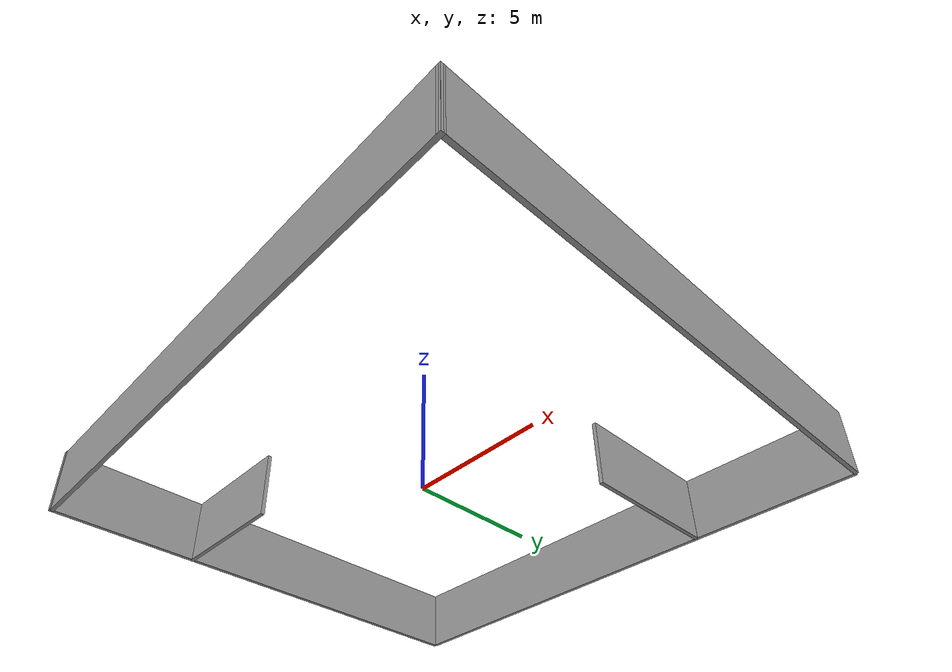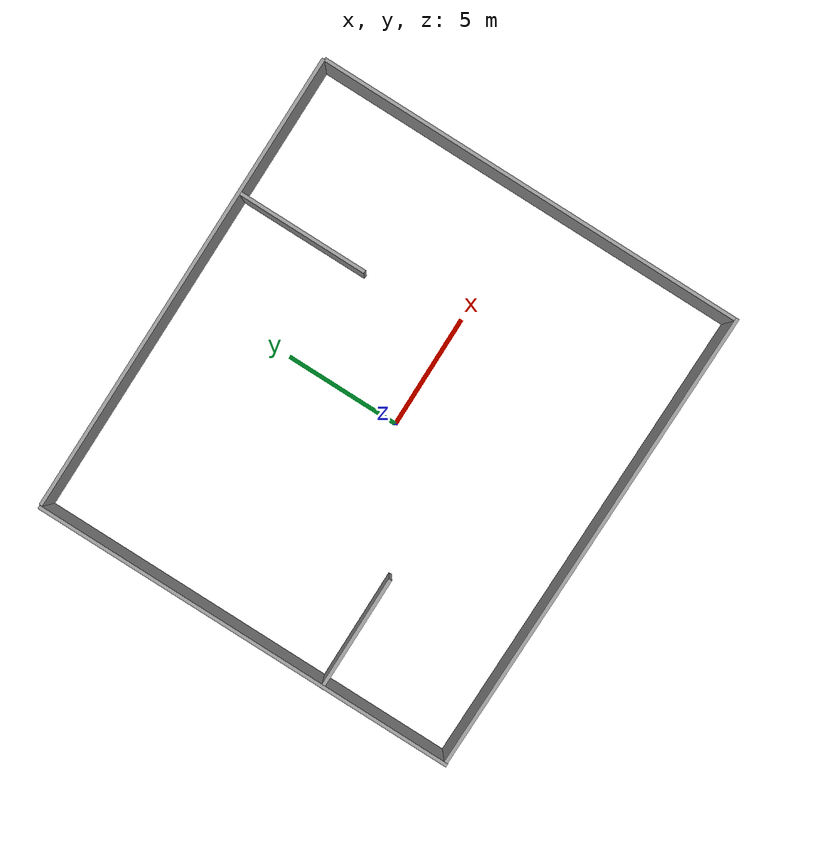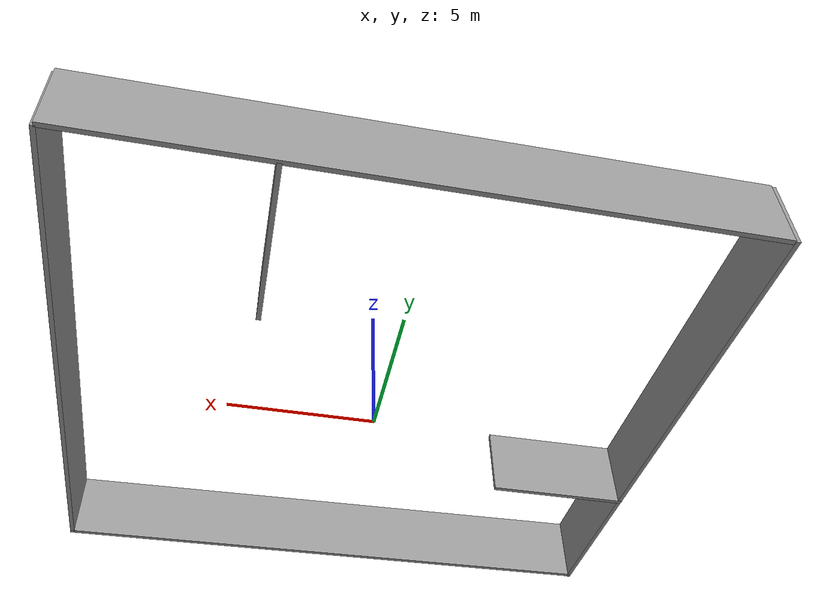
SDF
<?xml version='1.0'?>
<sdf version='1.7'>
  <model name='custom_map'>
    <pose>0.191195 0.468841 0 0 -0 0</pose>
    <link name='Wall_34'>
      <collision name='Wall_34_Collision'>
        <geometry>
          <box>
            <size>20.5 0.15 2.5</size>
          </box>
        </geometry>
        <pose>0 0 1.25 0 -0 0</pose>
      </collision>
      <visual name='Wall_34_Visual'>
        <pose>0 0 1.25 0 -0 0</pose>
        <geometry>
          <box>
            <size>20.5 0.15 2.5</size>
          </box>
        </geometry>
        <material>
          <script>
            <uri>file://media/materials/scripts/gazebo.material</uri>
            <name>Gazebo/Grey</name>
          </script>
          <ambient>1 1 1 1</ambient>
        </material>
        <meta>
          <layer>0</layer>
        </meta>
      </visual>
      <pose>0.041285 9.48138 0 0 -0 0</pose>
    </link>
    <link name='Wall_36'>
      <collision name='Wall_36_Collision'>
        <geometry>
          <box>
            <size>18.75 0.15 2.5</size>
          </box>
        </geometry>
        <pose>0 0 1.25 0 -0 0</pose>
      </collision>
      <visual name='Wall_36_Visual'>
        <pose>0 0 1.25 0 -0 0</pose>
        <geometry>
          <box>
            <size>18.75 0.15 2.5</size>
          </box>
        </geometry>
        <material>
          <script>
            <uri>file://media/materials/scripts/gazebo.material</uri>
            <name>Gazebo/Grey</name>
          </script>
          <ambient>1 1 1 1</ambient>
        </material>
        <meta>
          <layer>0</layer>
        </meta>
      </visual>
      <pose>-10.2977 0.139063 0 0 -0 -1.5708</pose>
    </link>
    <link name='Wall_37'>
      <collision name='Wall_37_Collision'>
        <geometry>
          <box>
            <size>20.7525 0.15 2.5</size>
          </box>
        </geometry>
        <pose>0 0 1.25 0 -0 0</pose>
      </collision>
      <visual name='Wall_37_Visual'>
        <pose>0 0 1.25 0 -0 0</pose>
        <geometry>
          <box>
            <size>20.7525 0.15 2.5</size>
          </box>
        </geometry>
        <material>
          <script>
            <uri>file://media/materials/scripts/gazebo.material</uri>
            <name>Gazebo/Grey</name>
          </script>
          <ambient>1 1 1 1</ambient>
        </material>
        <meta>
          <layer>0</layer>
        </meta>
      </visual>
      <pose>0.0023 -9.30724 0 0 -0 -0.016785</pose>
    </link>
    <link name='Wall_38'>
      <collision name='Wall_38_Collision'>
        <geometry>
          <box>
            <size>19 0.15 2.5</size>
          </box>
        </geometry>
        <pose>0 0 1.25 0 -0 0</pose>
      </collision>
      <visual name='Wall_38_Visual'>
        <pose>0 0 1.25 0 -0 0</pose>
        <geometry>
          <box>
            <size>19 0.15 2.5</size>
          </box>
        </geometry>
        <material>
          <script>
            <uri>file://media/materials/scripts/gazebo.material</uri>
            <name>Gazebo/Grey</name>
          </script>
          <ambient>1 1 1 1</ambient>
        </material>
        <meta>
          <layer>0</layer>
        </meta>
      </visual>
      <pose>10.3023 -0.055139 0 0 -0 1.5708</pose>
    </link>
    <link name='Wall_40'>
      <collision name='Wall_40_Collision'>
        <geometry>
          <box>
            <size>5 0.15 2.5</size>
          </box>
        </geometry>
        <pose>0 0 1.25 0 -0 0</pose>
      </collision>
      <visual name='Wall_40_Visual'>
        <pose>0 0 1.25 0 -0 0</pose>
        <geometry>
          <box>
            <size>5 0.15 2.5</size>
          </box>
        </geometry>
        <material>
          <script>
            <uri>file://media/materials/scripts/gazebo.material</uri>
            <name>Gazebo/Grey</name>
          </script>
          <ambient>1 1 1 1</ambient>
        </material>
        <meta>
          <layer>0</layer>
        </meta>
      </visual>
      <pose>-7.87833 -3.52061 0 0 -0 0</pose>
    </link>
    <link name='Wall_43'>
      <collision name='Wall_43_Collision'>
        <geometry>
          <box>
            <size>5.75 0.15 2.5</size>
          </box>
        </geometry>
        <pose>0 0 1.25 0 -0 0</pose>
      </collision>
      <visual name='Wall_43_Visual'>
        <pose>0 0 1.25 0 -0 0</pose>
        <geometry>
          <box>
            <size>5.75 0.15 2.5</size>
          </box>
        </geometry>
        <material>
          <script>
            <uri>file://media/materials/scripts/gazebo.material</uri>
            <name>Gazebo/Grey</name>
          </script>
          <ambient>1 1 1 1</ambient>
        </material>
        <meta>
          <layer>0</layer>
        </meta>
      </visual>
      <pose>4.162 6.58561 0 0 -0 -1.5708</pose>
    </link>
    <static>1</static>
  </model>
</sdf>
